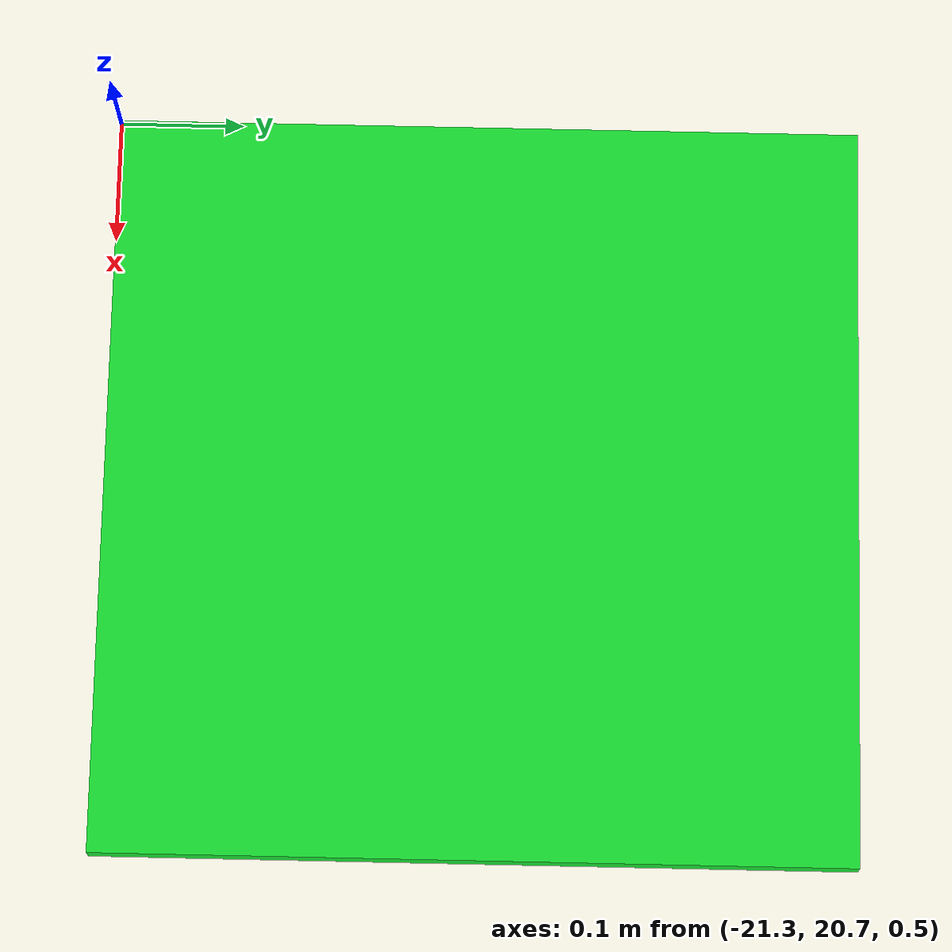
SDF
<?xml version='1.0'?>
<sdf version="1.4">
<model name="my_model">
  <pose>-21 21 0.5 0 0 0</pose>
  <static>true</static>
    <link name="link">
      <inertial>
        <mass>1.0</mass>
        <inertia> <!-- inertias are tricky to compute -->
          <!-- http://gazebosim.org/tutorials?tut=inertia&cat=build_robot -->
          <ixx>0.083</ixx>       <!-- for a box: ixx = 0.083 * mass * (y*y + z*z) -->
          <ixy>0.0</ixy>         <!-- for a box: ixy = 0 -->
          <ixz>0.0</ixz>         <!-- for a box: ixz = 0 -->
          <iyy>0.083</iyy>       <!-- for a box: iyy = 0.083 * mass * (x*x + z*z) -->
          <iyz>0.0</iyz>         <!-- for a box: iyz = 0 -->
          <izz>0.083</izz>       <!-- for a box: izz = 0.083 * mass * (x*x + y*y) -->
        </inertia>
      </inertial>
      <collision name="collision">
        <geometry>
          <box>
            <size>0.1 0.1 0.1</size>
          </box>
        </geometry>
      </collision>
      <visual name="visual">
        <geometry>
          <box>
            <size>0.6 0.6 0.02</size><!-- box size-->
          </box>
        </geometry>
        <material> <!-- green -->
          <ambient>0.3 0.1 0.1 1</ambient>
          <diffuse>0.1 0.9 0.2 1</diffuse>
          <specular>0 0 0 0</specular>
          <emissive>0 0 0 1</emissive>

        </material>
      </visual>
    </link>
  </model>
</sdf>
